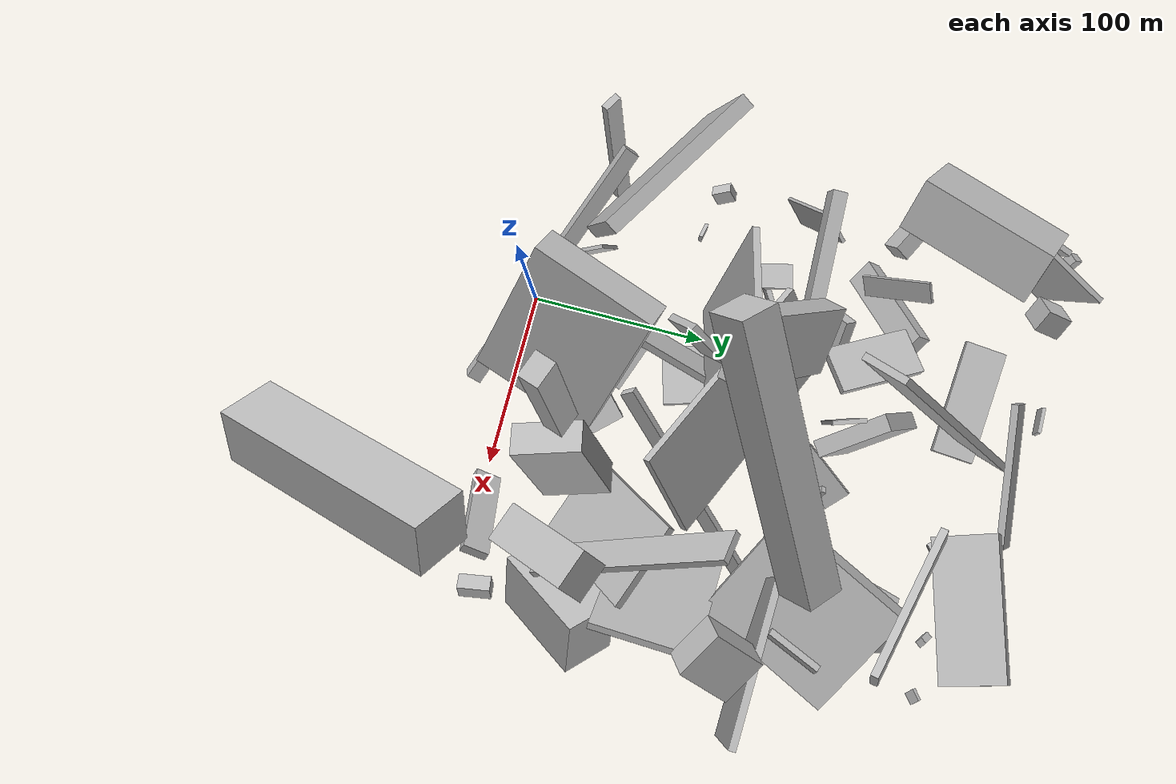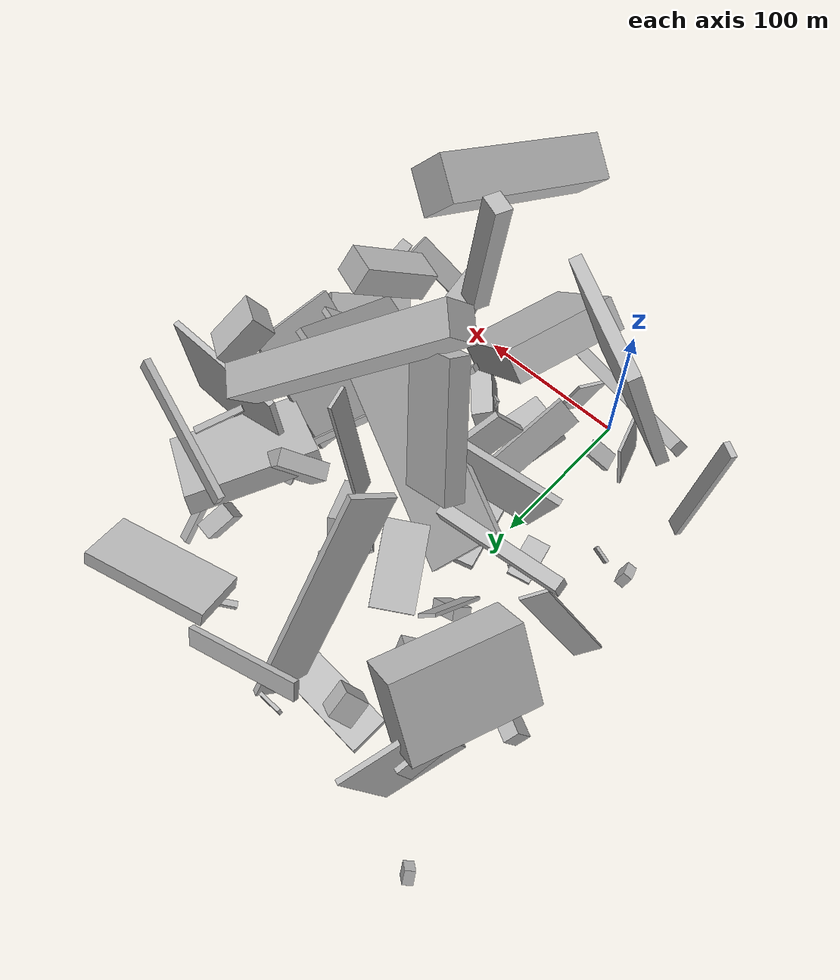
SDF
<sdf version="1.6">
 <world name="default">
  <model name="building_2">
   <static>0</static>
   <pose>152.42233029523481 9.300601098538692 126.22452351409257 -1.9900821503352017 0.5649265267559791 2.6356840387203686</pose>
   <link name="link">
    <gravity>0</gravity>
    <pose>0 0 66.5 0 0 0</pose>
    <collision name="collision"><geometry><box><size>32 32 133</size></box></geometry></collision>
    <visual name="visual">
     <cast_shadows>0</cast_shadows>
     <geometry><box><size>32 32 133</size></box></geometry>
     <material>
      <script>
       <uri>model://HANNAS_wall/materials/scripts</uri>
       <uri>model://HANNAS_wall/materials/textures</uri>
       <name>vrc/HANNAS_wall</name>
      </script>
     </material>
    </visual>
   </link>
  </model>
  <model name="building_4">
   <static>0</static>
   <pose>42.096926980872 282.9988920719816 45.15552902809155 2.5614873497946133 -0.9766296485122589 -0.8965976631601812</pose>
   <link name="link">
    <gravity>0</gravity>
    <pose>0 0 2.0 0 0 0</pose>
    <collision name="collision"><geometry><box><size>12 79 4</size></box></geometry></collision>
    <visual name="visual">
     <cast_shadows>0</cast_shadows>
     <geometry><box><size>12 79 4</size></box></geometry>
     <material>
      <script>
       <uri>model://HANNAS_wall/materials/scripts</uri>
       <uri>model://HANNAS_wall/materials/textures</uri>
       <name>vrc/HANNAS_wall</name>
      </script>
     </material>
    </visual>
   </link>
  </model>
  <model name="building_7">
   <static>0</static>
   <pose>-35.88063882042383 195.4363901122762 31.777627158521067 2.6410717811342366 -0.5989881819409302 2.553978412977638</pose>
   <link name="link">
    <gravity>0</gravity>
    <pose>0 0 5.0 0 0 0</pose>
    <collision name="collision"><geometry><box><size>16 60 10</size></box></geometry></collision>
    <visual name="visual">
     <cast_shadows>0</cast_shadows>
     <geometry><box><size>16 60 10</size></box></geometry>
     <material>
      <script>
       <uri>model://HANNAS_wall/materials/scripts</uri>
       <uri>model://HANNAS_wall/materials/textures</uri>
       <name>vrc/HANNAS_wall</name>
      </script>
     </material>
    </visual>
   </link>
  </model>
  <model name="building_9">
   <static>0</static>
   <pose>172.1837442272176 165.32553899334766 49.87654126402375 -2.7209618552122268 -1.4939852324768128 1.1256222110666152</pose>
   <link name="link">
    <gravity>0</gravity>
    <pose>0 0 2.0 0 0 0</pose>
    <collision name="collision"><geometry><box><size>71 88 4</size></box></geometry></collision>
    <visual name="visual">
     <cast_shadows>0</cast_shadows>
     <geometry><box><size>71 88 4</size></box></geometry>
     <material>
      <script>
       <uri>model://HANNAS_wall/materials/scripts</uri>
       <uri>model://HANNAS_wall/materials/textures</uri>
       <name>vrc/HANNAS_wall</name>
      </script>
     </material>
    </visual>
   </link>
  </model>
  <model name="building_16">
   <static>0</static>
   <pose>60.49876915282245 142.67490574462036 53.55372624333087 0.6424699418618434 -0.2744063656386967 -0.40605717008488196</pose>
   <link name="link">
    <gravity>0</gravity>
    <pose>0 0 27.5 0 0 0</pose>
    <collision name="collision"><geometry><box><size>127 4 55</size></box></geometry></collision>
    <visual name="visual">
     <cast_shadows>0</cast_shadows>
     <geometry><box><size>127 4 55</size></box></geometry>
     <material>
      <script>
       <uri>model://HANNAS_wall/materials/scripts</uri>
       <uri>model://HANNAS_wall/materials/textures</uri>
       <name>vrc/HANNAS_wall</name>
      </script>
     </material>
    </visual>
   </link>
  </model>
  <model name="building_21">
   <static>0</static>
   <pose>102.45086113861157 31.846263380389416 73.79373037577506 0.8201469944164821 -1.2658715717765194 -2.144439866136028</pose>
   <link name="link">
    <gravity>0</gravity>
    <pose>0 0 18.5 0 0 0</pose>
    <collision name="collision"><geometry><box><size>59 17 37</size></box></geometry></collision>
    <visual name="visual">
     <cast_shadows>0</cast_shadows>
     <geometry><box><size>59 17 37</size></box></geometry>
     <material>
      <script>
       <uri>model://HANNAS_wall/materials/scripts</uri>
       <uri>model://HANNAS_wall/materials/textures</uri>
       <name>vrc/HANNAS_wall</name>
      </script>
     </material>
    </visual>
   </link>
  </model>
  <model name="building_26">
   <static>0</static>
   <pose>23.459761342440395 50.82115027640816 21.65610436838669 0.2724773046648117 0.2986560567105044 1.2732314970203737</pose>
   <link name="link">
    <gravity>0</gravity>
    <pose>0 0 9.5 0 0 0</pose>
    <collision name="collision"><geometry><box><size>31 27 19</size></box></geometry></collision>
    <visual name="visual">
     <cast_shadows>0</cast_shadows>
     <geometry><box><size>31 27 19</size></box></geometry>
     <material>
      <script>
       <uri>model://HANNAS_wall/materials/scripts</uri>
       <uri>model://HANNAS_wall/materials/textures</uri>
       <name>vrc/HANNAS_wall</name>
      </script>
     </material>
    </visual>
   </link>
  </model>
  <model name="building_27">
   <static>0</static>
   <pose>-25.24261606161491 107.71383338074524 64.36000130535865 1.3027196394352996 0.2556428231968021 1.7552546998250067</pose>
   <link name="link">
    <gravity>0</gravity>
    <pose>0 0 30.5 0 0 0</pose>
    <collision name="collision"><geometry><box><size>4 88 61</size></box></geometry></collision>
    <visual name="visual">
     <cast_shadows>0</cast_shadows>
     <geometry><box><size>4 88 61</size></box></geometry>
     <material>
      <script>
       <uri>model://HANNAS_wall/materials/scripts</uri>
       <uri>model://HANNAS_wall/materials/textures</uri>
       <name>vrc/HANNAS_wall</name>
      </script>
     </material>
    </visual>
   </link>
  </model>
  <model name="building_28">
   <static>0</static>
   <pose>15.742415745526994 75.45590572815752 45.309912809821164 2.561096155473627 -0.7797399080218421 0.22382917311245695</pose>
   <link name="link">
    <gravity>0</gravity>
    <pose>0 0 2.0 0 0 0</pose>
    <collision name="collision"><geometry><box><size>19 76 4</size></box></geometry></collision>
    <visual name="visual">
     <cast_shadows>0</cast_shadows>
     <geometry><box><size>19 76 4</size></box></geometry>
     <material>
      <script>
       <uri>model://HANNAS_wall/materials/scripts</uri>
       <uri>model://HANNAS_wall/materials/textures</uri>
       <name>vrc/HANNAS_wall</name>
      </script>
     </material>
    </visual>
   </link>
  </model>
  <model name="building_32">
   <static>0</static>
   <pose>151.5416675359984 113.1220202769631 38.90093236110823 -0.8540106399498949 0.004329102594364371 1.5262706384560505</pose>
   <link name="link">
    <gravity>0</gravity>
    <pose>0 0 2.0 0 0 0</pose>
    <collision name="collision"><geometry><box><size>58 83 4</size></box></geometry></collision>
    <visual name="visual">
     <cast_shadows>0</cast_shadows>
     <geometry><box><size>58 83 4</size></box></geometry>
     <material>
      <script>
       <uri>model://HANNAS_wall/materials/scripts</uri>
       <uri>model://HANNAS_wall/materials/textures</uri>
       <name>vrc/HANNAS_wall</name>
      </script>
     </material>
    </visual>
   </link>
  </model>
  <model name="building_33">
   <static>0</static>
   <pose>157.6785712201397 226.69217224111304 40.62006326729352 -1.5080656141921909 -0.47793407802932747 2.658161037450032</pose>
   <link name="link">
    <gravity>0</gravity>
    <pose>0 0 41.0 0 0 0</pose>
    <collision name="collision"><geometry><box><size>70 13 82</size></box></geometry></collision>
    <visual name="visual">
     <cast_shadows>0</cast_shadows>
     <geometry><box><size>70 13 82</size></box></geometry>
     <material>
      <script>
       <uri>model://HANNAS_wall/materials/scripts</uri>
       <uri>model://HANNAS_wall/materials/textures</uri>
       <name>vrc/HANNAS_wall</name>
      </script>
     </material>
    </visual>
   </link>
  </model>
  <model name="building_40">
   <static>0</static>
   <pose>91.74232952677555 114.98618038016922 54.275255315298566 0.760561872734806 -0.618972989703657 1.9173274964065592</pose>
   <link name="link">
    <gravity>0</gravity>
    <pose>0 0 2.0 0 0 0</pose>
    <collision name="collision"><geometry><box><size>8 131 4</size></box></geometry></collision>
    <visual name="visual">
     <cast_shadows>0</cast_shadows>
     <geometry><box><size>8 131 4</size></box></geometry>
     <material>
      <script>
       <uri>model://HANNAS_wall/materials/scripts</uri>
       <uri>model://HANNAS_wall/materials/textures</uri>
       <name>vrc/HANNAS_wall</name>
      </script>
     </material>
    </visual>
   </link>
  </model>
  <model name="building_41">
   <static>0</static>
   <pose>0.21186698337289656 243.91762181542816 16.746223878311223 2.4772218470482303 1.4076971234457663 -2.299200870163506</pose>
   <link name="link">
    <gravity>0</gravity>
    <pose>0 0 12.0 0 0 0</pose>
    <collision name="collision"><geometry><box><size>4 65 24</size></box></geometry></collision>
    <visual name="visual">
     <cast_shadows>0</cast_shadows>
     <geometry><box><size>4 65 24</size></box></geometry>
     <material>
      <script>
       <uri>model://HANNAS_wall/materials/scripts</uri>
       <uri>model://HANNAS_wall/materials/textures</uri>
       <name>vrc/HANNAS_wall</name>
      </script>
     </material>
    </visual>
   </link>
  </model>
  <model name="building_46">
   <static>0</static>
   <pose>24.581769167013213 233.9079767213592 73.91647865820991 1.7916880451371118 -0.5267914129509113 1.1098553724860225</pose>
   <link name="link">
    <gravity>0</gravity>
    <pose>0 0 2.0 0 0 0</pose>
    <collision name="collision"><geometry><box><size>28 150 4</size></box></geometry></collision>
    <visual name="visual">
     <cast_shadows>0</cast_shadows>
     <geometry><box><size>28 150 4</size></box></geometry>
     <material>
      <script>
       <uri>model://HANNAS_wall/materials/scripts</uri>
       <uri>model://HANNAS_wall/materials/textures</uri>
       <name>vrc/HANNAS_wall</name>
      </script>
     </material>
    </visual>
   </link>
  </model>
  <model name="building_48">
   <static>0</static>
   <pose>0.9185182569056458 16.05612232567306 75.20910910591914 -2.5817223938836484 -0.40113878775696615 2.708077581698563</pose>
   <link name="link">
    <gravity>0</gravity>
    <pose>0 0 4.0 0 0 0</pose>
    <collision name="collision"><geometry><box><size>150 8 8</size></box></geometry></collision>
    <visual name="visual">
     <cast_shadows>0</cast_shadows>
     <geometry><box><size>150 8 8</size></box></geometry>
     <material>
      <script>
       <uri>model://HANNAS_wall/materials/scripts</uri>
       <uri>model://HANNAS_wall/materials/textures</uri>
       <name>vrc/HANNAS_wall</name>
      </script>
     </material>
    </visual>
   </link>
  </model>
  <model name="building_49">
   <static>0</static>
   <pose>86.66063074167242 41.93246513726297 150.8931528731307 -2.068247010331143 1.4712553646527113 0.7341699141451893</pose>
   <link name="link">
    <gravity>0</gravity>
    <pose>0 0 7.0 0 0 0</pose>
    <collision name="collision"><geometry><box><size>83 11 14</size></box></geometry></collision>
    <visual name="visual">
     <cast_shadows>0</cast_shadows>
     <geometry><box><size>83 11 14</size></box></geometry>
     <material>
      <script>
       <uri>model://HANNAS_wall/materials/scripts</uri>
       <uri>model://HANNAS_wall/materials/textures</uri>
       <name>vrc/HANNAS_wall</name>
      </script>
     </material>
    </visual>
   </link>
  </model>
  <model name="building_54">
   <static>0</static>
   <pose>26.304677418278185 111.4302920119732 82.17824292562936 0.9372469886001725 0.04054813314128904 -0.4699355250626714</pose>
   <link name="link">
    <gravity>0</gravity>
    <pose>0 0 13.5 0 0 0</pose>
    <collision name="collision"><geometry><box><size>4 28 27</size></box></geometry></collision>
    <visual name="visual">
     <cast_shadows>0</cast_shadows>
     <geometry><box><size>4 28 27</size></box></geometry>
     <material>
      <script>
       <uri>model://HANNAS_wall/materials/scripts</uri>
       <uri>model://HANNAS_wall/materials/textures</uri>
       <name>vrc/HANNAS_wall</name>
      </script>
     </material>
    </visual>
   </link>
  </model>
  <model name="building_60">
   <static>0</static>
   <pose>181.66629111289356 83.9836842231261 35.72566355148956 2.289998716340971 0.9608352932238879 0.052463613633189805</pose>
   <link name="link">
    <gravity>0</gravity>
    <pose>0 0 28.5 0 0 0</pose>
    <collision name="collision"><geometry><box><size>39 30 57</size></box></geometry></collision>
    <visual name="visual">
     <cast_shadows>0</cast_shadows>
     <geometry><box><size>39 30 57</size></box></geometry>
     <material>
      <script>
       <uri>model://HANNAS_wall/materials/scripts</uri>
       <uri>model://HANNAS_wall/materials/textures</uri>
       <name>vrc/HANNAS_wall</name>
      </script>
     </material>
    </visual>
   </link>
  </model>
  <model name="building_68">
   <static>0</static>
   <pose>137.5747591793177 96.70649619365679 82.11651513001433 0.7812156430565892 -0.44776774662785984 -0.14934844607636158</pose>
   <link name="link">
    <gravity>0</gravity>
    <pose>0 0 2.0 0 0 0</pose>
    <collision name="collision"><geometry><box><size>18 129 4</size></box></geometry></collision>
    <visual name="visual">
     <cast_shadows>0</cast_shadows>
     <geometry><box><size>18 129 4</size></box></geometry>
     <material>
      <script>
       <uri>model://HANNAS_wall/materials/scripts</uri>
       <uri>model://HANNAS_wall/materials/textures</uri>
       <name>vrc/HANNAS_wall</name>
      </script>
     </material>
    </visual>
   </link>
  </model>
  <model name="building_71">
   <static>0</static>
   <pose>134.95249990710266 184.67322444478677 117.29870709316087 0.8837518963767844 -0.36605665634446577 -0.7346794803478616</pose>
   <link name="link">
    <gravity>0</gravity>
    <pose>0 0 75.0 0 0 0</pose>
    <collision name="collision"><geometry><box><size>20 23 150</size></box></geometry></collision>
    <visual name="visual">
     <cast_shadows>0</cast_shadows>
     <geometry><box><size>20 23 150</size></box></geometry>
     <material>
      <script>
       <uri>model://HANNAS_wall/materials/scripts</uri>
       <uri>model://HANNAS_wall/materials/textures</uri>
       <name>vrc/HANNAS_wall</name>
      </script>
     </material>
    </visual>
   </link>
  </model>
  <model name="building_72">
   <static>0</static>
   <pose>129.17239955117816 228.41572052936635 126.89058756726115 0.9238021145227862 -1.1354190412993392 -2.7177885702513462</pose>
   <link name="link">
    <gravity>0</gravity>
    <pose>0 0 2.0 0 0 0</pose>
    <collision name="collision"><geometry><box><size>9 85 4</size></box></geometry></collision>
    <visual name="visual">
     <cast_shadows>0</cast_shadows>
     <geometry><box><size>9 85 4</size></box></geometry>
     <material>
      <script>
       <uri>model://HANNAS_wall/materials/scripts</uri>
       <uri>model://HANNAS_wall/materials/textures</uri>
       <name>vrc/HANNAS_wall</name>
      </script>
     </material>
    </visual>
   </link>
  </model>
  <model name="building_79">
   <static>0</static>
   <pose>41.82411314279655 194.99452376280638 75.91360563969086 1.613600862075014 -0.5361223149123683 2.116547844480711</pose>
   <link name="link">
    <gravity>0</gravity>
    <pose>0 0 4.5 0 0 0</pose>
    <collision name="collision"><geometry><box><size>41 41 9</size></box></geometry></collision>
    <visual name="visual">
     <cast_shadows>0</cast_shadows>
     <geometry><box><size>41 41 9</size></box></geometry>
     <material>
      <script>
       <uri>model://HANNAS_wall/materials/scripts</uri>
       <uri>model://HANNAS_wall/materials/textures</uri>
       <name>vrc/HANNAS_wall</name>
      </script>
     </material>
    </visual>
   </link>
  </model>
  <model name="building_84">
   <static>0</static>
   <pose>3.830412802898927 111.66089949103365 14.124271670825188 -1.580256828080733 0.11166927472663302 -1.2960013006563287</pose>
   <link name="link">
    <gravity>0</gravity>
    <pose>0 0 16.5 0 0 0</pose>
    <collision name="collision"><geometry><box><size>67 4 33</size></box></geometry></collision>
    <visual name="visual">
     <cast_shadows>0</cast_shadows>
     <geometry><box><size>67 4 33</size></box></geometry>
     <material>
      <script>
       <uri>model://HANNAS_wall/materials/scripts</uri>
       <uri>model://HANNAS_wall/materials/textures</uri>
       <name>vrc/HANNAS_wall</name>
      </script>
     </material>
    </visual>
   </link>
  </model>
  <model name="building_85">
   <static>0</static>
   <pose>161.19960800051376 189.29158090085713 57.674093801411765 2.9582077475473914 -0.4130568547110429 -0.3272084377911734</pose>
   <link name="link">
    <gravity>0</gravity>
    <pose>0 0 2.0 0 0 0</pose>
    <collision name="collision"><geometry><box><size>4 32 4</size></box></geometry></collision>
    <visual name="visual">
     <cast_shadows>0</cast_shadows>
     <geometry><box><size>4 32 4</size></box></geometry>
     <material>
      <script>
       <uri>model://HANNAS_wall/materials/scripts</uri>
       <uri>model://HANNAS_wall/materials/textures</uri>
       <name>vrc/HANNAS_wall</name>
      </script>
     </material>
    </visual>
   </link>
  </model>
  <model name="building_87">
   <static>0</static>
   <pose>79.00849768677497 265.3218452734974 41.504796183092076 1.5388375983981977 -0.41333605852350114 1.8458585883518386</pose>
   <link name="link">
    <gravity>0</gravity>
    <pose>0 0 39.5 0 0 0</pose>
    <collision name="collision"><geometry><box><size>36 9 79</size></box></geometry></collision>
    <visual name="visual">
     <cast_shadows>0</cast_shadows>
     <geometry><box><size>36 9 79</size></box></geometry>
     <material>
      <script>
       <uri>model://HANNAS_wall/materials/scripts</uri>
       <uri>model://HANNAS_wall/materials/textures</uri>
       <name>vrc/HANNAS_wall</name>
      </script>
     </material>
    </visual>
   </link>
  </model>
  <model name="building_88">
   <static>0</static>
   <pose>-84.7504277012542 32.02086546142266 54.69824919135526 1.5050878787879722 -0.08823910062599832 1.060327351548515</pose>
   <link name="link">
    <gravity>0</gravity>
    <pose>0 0 5.0 0 0 0</pose>
    <collision name="collision"><geometry><box><size>4 101 10</size></box></geometry></collision>
    <visual name="visual">
     <cast_shadows>0</cast_shadows>
     <geometry><box><size>4 101 10</size></box></geometry>
     <material>
      <script>
       <uri>model://HANNAS_wall/materials/scripts</uri>
       <uri>model://HANNAS_wall/materials/textures</uri>
       <name>vrc/HANNAS_wall</name>
      </script>
     </material>
    </visual>
   </link>
  </model>
  <model name="building_89">
   <static>0</static>
   <pose>78.92464250827265 36.97795186631538 21.822795056075485 1.490695301946631 -0.24965683342504505 -2.375994911768439</pose>
   <link name="link">
    <gravity>0</gravity>
    <pose>0 0 18.5 0 0 0</pose>
    <collision name="collision"><geometry><box><size>14 20 37</size></box></geometry></collision>
    <visual name="visual">
     <cast_shadows>0</cast_shadows>
     <geometry><box><size>14 20 37</size></box></geometry>
     <material>
      <script>
       <uri>model://HANNAS_wall/materials/scripts</uri>
       <uri>model://HANNAS_wall/materials/textures</uri>
       <name>vrc/HANNAS_wall</name>
      </script>
     </material>
    </visual>
   </link>
  </model>
  <model name="building_90">
   <static>0</static>
   <pose>-26.41346465355104 268.8447337281282 96.67308029547891 0.8017011022150139 -0.5005838987385095 -1.5571899116833932</pose>
   <link name="link">
    <gravity>0</gravity>
    <pose>0 0 6.0 0 0 0</pose>
    <collision name="collision"><geometry><box><size>15 14 12</size></box></geometry></collision>
    <visual name="visual">
     <cast_shadows>0</cast_shadows>
     <geometry><box><size>15 14 12</size></box></geometry>
     <material>
      <script>
       <uri>model://HANNAS_wall/materials/scripts</uri>
       <uri>model://HANNAS_wall/materials/textures</uri>
       <name>vrc/HANNAS_wall</name>
      </script>
     </material>
    </visual>
   </link>
  </model>
  <model name="building_91">
   <static>0</static>
   <pose>134.87672359609644 261.964418627514 12.181159679398286 2.3410454015406263 -0.025687105266667128 0.955254663790249</pose>
   <link name="link">
    <gravity>0</gravity>
    <pose>0 0 2.5 0 0 0</pose>
    <collision name="collision"><geometry><box><size>4 8 5</size></box></geometry></collision>
    <visual name="visual">
     <cast_shadows>0</cast_shadows>
     <geometry><box><size>4 8 5</size></box></geometry>
     <material>
      <script>
       <uri>model://HANNAS_wall/materials/scripts</uri>
       <uri>model://HANNAS_wall/materials/textures</uri>
       <name>vrc/HANNAS_wall</name>
      </script>
     </material>
    </visual>
   </link>
  </model>
  <model name="building_92">
   <static>0</static>
   <pose>83.55662447409391 253.29931992467147 7.702056708117101 -1.2516581342038744 -0.02632075797590579 -0.9109849777625056</pose>
   <link name="link">
    <gravity>0</gravity>
    <pose>0 0 14.5 0 0 0</pose>
    <collision name="collision"><geometry><box><size>4 4 29</size></box></geometry></collision>
    <visual name="visual">
     <cast_shadows>0</cast_shadows>
     <geometry><box><size>4 4 29</size></box></geometry>
     <material>
      <script>
       <uri>model://HANNAS_wall/materials/scripts</uri>
       <uri>model://HANNAS_wall/materials/textures</uri>
       <name>vrc/HANNAS_wall</name>
      </script>
     </material>
    </visual>
   </link>
  </model>
  <model name="building_93">
   <static>0</static>
   <pose>-2.655198550285738 185.32912642338286 76.9664814968375 -1.2025206232160837 1.2292253906236614 -0.6190943176380629</pose>
   <link name="link">
    <gravity>0</gravity>
    <pose>0 0 12.5 0 0 0</pose>
    <collision name="collision"><geometry><box><size>4 49 25</size></box></geometry></collision>
    <visual name="visual">
     <cast_shadows>0</cast_shadows>
     <geometry><box><size>4 49 25</size></box></geometry>
     <material>
      <script>
       <uri>model://HANNAS_wall/materials/scripts</uri>
       <uri>model://HANNAS_wall/materials/textures</uri>
       <name>vrc/HANNAS_wall</name>
      </script>
     </material>
    </visual>
   </link>
  </model>
  <model name="building_108">
   <static>0</static>
   <pose>69.37209755465028 186.40225501150493 11.072009079990066 -0.7165046743824521 0.8581922393818937 -0.6848792879594238</pose>
   <link name="link">
    <gravity>0</gravity>
    <pose>0 0 2.0 0 0 0</pose>
    <collision name="collision"><geometry><box><size>6 3 4</size></box></geometry></collision>
    <visual name="visual">
     <cast_shadows>0</cast_shadows>
     <geometry><box><size>6 3 4</size></box></geometry>
     <material>
      <script>
       <uri>model://HANNAS_wall/materials/scripts</uri>
       <uri>model://HANNAS_wall/materials/textures</uri>
       <name>vrc/HANNAS_wall</name>
      </script>
     </material>
    </visual>
   </link>
  </model>
  <model name="building_113">
   <static>0</static>
   <pose>137.3181637405078 54.1252546587435 18.63826551301723 -1.0678172053967758 0.10492852163526416 1.9856403361231771</pose>
   <link name="link">
    <gravity>0</gravity>
    <pose>0 0 2.0 0 0 0</pose>
    <collision name="collision"><geometry><box><size>15 15 4</size></box></geometry></collision>
    <visual name="visual">
     <cast_shadows>0</cast_shadows>
     <geometry><box><size>15 15 4</size></box></geometry>
     <material>
      <script>
       <uri>model://HANNAS_wall/materials/scripts</uri>
       <uri>model://HANNAS_wall/materials/textures</uri>
       <name>vrc/HANNAS_wall</name>
      </script>
     </material>
    </visual>
   </link>
  </model>
  <model name="building_114">
   <static>0</static>
   <pose>135.45604153608065 12.450193409009412 58.30316069823279 -0.5205111344575549 -0.6675508528604709 0.23625808887571803</pose>
   <link name="link">
    <gravity>0</gravity>
    <pose>0 0 2.5 0 0 0</pose>
    <collision name="collision"><geometry><box><size>56 14 5</size></box></geometry></collision>
    <visual name="visual">
     <cast_shadows>0</cast_shadows>
     <geometry><box><size>56 14 5</size></box></geometry>
     <material>
      <script>
       <uri>model://HANNAS_wall/materials/scripts</uri>
       <uri>model://HANNAS_wall/materials/textures</uri>
       <name>vrc/HANNAS_wall</name>
      </script>
     </material>
    </visual>
   </link>
  </model>
  <model name="building_118">
   <static>0</static>
   <pose>-66.64194956607521 151.35297736357364 42.31051475997283 0.18106480295952396 -1.08057731507474 0.6447893356782521</pose>
   <link name="link">
    <gravity>0</gravity>
    <pose>0 0 8.5 0 0 0</pose>
    <collision name="collision"><geometry><box><size>80 2 17</size></box></geometry></collision>
    <visual name="visual">
     <cast_shadows>0</cast_shadows>
     <geometry><box><size>80 2 17</size></box></geometry>
     <material>
      <script>
       <uri>model://HANNAS_wall/materials/scripts</uri>
       <uri>model://HANNAS_wall/materials/textures</uri>
       <name>vrc/HANNAS_wall</name>
      </script>
     </material>
    </visual>
   </link>
  </model>
  <model name="building_124">
   <static>0</static>
   <pose>41.67428767741245 141.38742075331268 137.7635516199394 0.6216963853197501 -0.9228323986170224 -0.8588644308909181</pose>
   <link name="link">
    <gravity>0</gravity>
    <pose>0 0 17.5 0 0 0</pose>
    <collision name="collision"><geometry><box><size>80 13 35</size></box></geometry></collision>
    <visual name="visual">
     <cast_shadows>0</cast_shadows>
     <geometry><box><size>80 13 35</size></box></geometry>
     <material>
      <script>
       <uri>model://HANNAS_wall/materials/scripts</uri>
       <uri>model://HANNAS_wall/materials/textures</uri>
       <name>vrc/HANNAS_wall</name>
      </script>
     </material>
    </visual>
   </link>
  </model>
  <model name="building_127">
   <static>0</static>
   <pose>-36.138355567953965 141.41686665216923 46.089510602880964 1.6834840650713698 1.5543588179972185 0.33866585793805326</pose>
   <link name="link">
    <gravity>0</gravity>
    <pose>0 0 13.5 0 0 0</pose>
    <collision name="collision"><geometry><box><size>2 14 27</size></box></geometry></collision>
    <visual name="visual">
     <cast_shadows>0</cast_shadows>
     <geometry><box><size>2 14 27</size></box></geometry>
     <material>
      <script>
       <uri>model://HANNAS_wall/materials/scripts</uri>
       <uri>model://HANNAS_wall/materials/textures</uri>
       <name>vrc/HANNAS_wall</name>
      </script>
     </material>
    </visual>
   </link>
  </model>
  <model name="building_136">
   <static>0</static>
   <pose>148.04655091744903 60.38984113060768 80.53313308609921 0.021101218112347775 -0.5998730286778289 1.2162299499253673</pose>
   <link name="link">
    <gravity>0</gravity>
    <pose>0 0 10.0 0 0 0</pose>
    <collision name="collision"><geometry><box><size>57 22 20</size></box></geometry></collision>
    <visual name="visual">
     <cast_shadows>0</cast_shadows>
     <geometry><box><size>57 22 20</size></box></geometry>
     <material>
      <script>
       <uri>model://HANNAS_wall/materials/scripts</uri>
       <uri>model://HANNAS_wall/materials/textures</uri>
       <name>vrc/HANNAS_wall</name>
      </script>
     </material>
    </visual>
   </link>
  </model>
  <model name="building_139">
   <static>0</static>
   <pose>-54.67008197862975 225.89869841322042 100.05874267393595 0.8786982054403538 0.07174180884399635 -1.9214660878790364</pose>
   <link name="link">
    <gravity>0</gravity>
    <pose>0 0 13.5 0 0 0</pose>
    <collision name="collision"><geometry><box><size>72 47 27</size></box></geometry></collision>
    <visual name="visual">
     <cast_shadows>0</cast_shadows>
     <geometry><box><size>72 47 27</size></box></geometry>
     <material>
      <script>
       <uri>model://HANNAS_wall/materials/scripts</uri>
       <uri>model://HANNAS_wall/materials/textures</uri>
       <name>vrc/HANNAS_wall</name>
      </script>
     </material>
    </visual>
   </link>
  </model>
  <model name="building_146">
   <static>0</static>
   <pose>-70.69876498077625 256.74664099457164 46.95049049349375 0.43456099965837847 -0.0559963701561626 2.748317573575436</pose>
   <link name="link">
    <gravity>0</gravity>
    <pose>0 0 28.0 0 0 0</pose>
    <collision name="collision"><geometry><box><size>3 50 56</size></box></geometry></collision>
    <visual name="visual">
     <cast_shadows>0</cast_shadows>
     <geometry><box><size>3 50 56</size></box></geometry>
     <material>
      <script>
       <uri>model://HANNAS_wall/materials/scripts</uri>
       <uri>model://HANNAS_wall/materials/textures</uri>
       <name>vrc/HANNAS_wall</name>
      </script>
     </material>
    </visual>
   </link>
  </model>
  <model name="building_150">
   <static>0</static>
   <pose>-92.18173266621392 293.30490570934745 13.27854563352819 0.8609946214310079 0.20611502448929178 -2.414494587302312</pose>
   <link name="link">
    <gravity>0</gravity>
    <pose>0 0 4.0 0 0 0</pose>
    <collision name="collision"><geometry><box><size>6 9 8</size></box></geometry></collision>
    <visual name="visual">
     <cast_shadows>0</cast_shadows>
     <geometry><box><size>6 9 8</size></box></geometry>
     <material>
      <script>
       <uri>model://HANNAS_wall/materials/scripts</uri>
       <uri>model://HANNAS_wall/materials/textures</uri>
       <name>vrc/HANNAS_wall</name>
      </script>
     </material>
    </visual>
   </link>
  </model>
  <model name="building_151">
   <static>0</static>
   <pose>148.23517281301997 218.8206450079436 14.978714597388018 2.239144825952237 -0.7000350774819818 2.8931562468046486</pose>
   <link name="link">
    <gravity>0</gravity>
    <pose>0 0 15.0 0 0 0</pose>
    <collision name="collision"><geometry><box><size>13 3 30</size></box></geometry></collision>
    <visual name="visual">
     <cast_shadows>0</cast_shadows>
     <geometry><box><size>13 3 30</size></box></geometry>
     <material>
      <script>
       <uri>model://HANNAS_wall/materials/scripts</uri>
       <uri>model://HANNAS_wall/materials/textures</uri>
       <name>vrc/HANNAS_wall</name>
      </script>
     </material>
    </visual>
   </link>
  </model>
  <model name="building_152">
   <static>0</static>
   <pose>-38.461023745916876 61.96175027838083 141.50513339044002 -0.08828223984609304 -0.32844961454530003 -2.1095051988470406</pose>
   <link name="link">
    <gravity>0</gravity>
    <pose>0 0 40.0 0 0 0</pose>
    <collision name="collision"><geometry><box><size>7 80 80</size></box></geometry></collision>
    <visual name="visual">
     <cast_shadows>0</cast_shadows>
     <geometry><box><size>7 80 80</size></box></geometry>
     <material>
      <script>
       <uri>model://HANNAS_wall/materials/scripts</uri>
       <uri>model://HANNAS_wall/materials/textures</uri>
       <name>vrc/HANNAS_wall</name>
      </script>
     </material>
    </visual>
   </link>
  </model>
  <model name="building_154">
   <static>0</static>
   <pose>109.28493196574189 180.65191419155468 48.59039065929154 0.33129650196583876 0.5518466000831495 -2.4237232800017683</pose>
   <link name="link">
    <gravity>0</gravity>
    <pose>0 0 10.5 0 0 0</pose>
    <collision name="collision"><geometry><box><size>32 11 21</size></box></geometry></collision>
    <visual name="visual">
     <cast_shadows>0</cast_shadows>
     <geometry><box><size>32 11 21</size></box></geometry>
     <material>
      <script>
       <uri>model://HANNAS_wall/materials/scripts</uri>
       <uri>model://HANNAS_wall/materials/textures</uri>
       <name>vrc/HANNAS_wall</name>
      </script>
     </material>
    </visual>
   </link>
  </model>
  <model name="building_174">
   <static>0</static>
   <pose>16.102638267609112 1.6471267451189737 28.19156657837086 1.4149120375371975 0.2636925628909257 2.6304339131077334</pose>
   <link name="link">
    <gravity>0</gravity>
    <pose>0 0 9.5 0 0 0</pose>
    <collision name="collision"><geometry><box><size>2 42 19</size></box></geometry></collision>
    <visual name="visual">
     <cast_shadows>0</cast_shadows>
     <geometry><box><size>2 42 19</size></box></geometry>
     <material>
      <script>
       <uri>model://HANNAS_wall/materials/scripts</uri>
       <uri>model://HANNAS_wall/materials/textures</uri>
       <name>vrc/HANNAS_wall</name>
      </script>
     </material>
    </visual>
   </link>
  </model>
  <model name="building_177">
   <static>0</static>
   <pose>58.30841510132986 48.896459324677544 31.405404558395595 2.696720580779652 0.3693205238838727 -2.318419143344399</pose>
   <link name="link">
    <gravity>0</gravity>
    <pose>0 0 10.5 0 0 0</pose>
    <collision name="collision"><geometry><box><size>2 8 21</size></box></geometry></collision>
    <visual name="visual">
     <cast_shadows>0</cast_shadows>
     <geometry><box><size>2 8 21</size></box></geometry>
     <material>
      <script>
       <uri>model://HANNAS_wall/materials/scripts</uri>
       <uri>model://HANNAS_wall/materials/textures</uri>
       <name>vrc/HANNAS_wall</name>
      </script>
     </material>
    </visual>
   </link>
  </model>
  <model name="building_179">
   <static>0</static>
   <pose>-19.057788044272776 170.0747988888679 23.915783830424566 -0.944905386119338 -0.6178934700997857 -0.9736253011168717</pose>
   <link name="link">
    <gravity>0</gravity>
    <pose>0 0 6.0 0 0 0</pose>
    <collision name="collision"><geometry><box><size>8 22 12</size></box></geometry></collision>
    <visual name="visual">
     <cast_shadows>0</cast_shadows>
     <geometry><box><size>8 22 12</size></box></geometry>
     <material>
      <script>
       <uri>model://HANNAS_wall/materials/scripts</uri>
       <uri>model://HANNAS_wall/materials/textures</uri>
       <name>vrc/HANNAS_wall</name>
      </script>
     </material>
    </visual>
   </link>
  </model>
  <model name="building_183">
   <static>0</static>
   <pose>129.88341918455976 226.1136108462717 27.103805146894217 -1.8933069399339753 0.41994908690558197 1.3508359268489907</pose>
   <link name="link">
    <gravity>0</gravity>
    <pose>0 0 5.5 0 0 0</pose>
    <collision name="collision"><geometry><box><size>20 19 11</size></box></geometry></collision>
    <visual name="visual">
     <cast_shadows>0</cast_shadows>
     <geometry><box><size>20 19 11</size></box></geometry>
     <material>
      <script>
       <uri>model://HANNAS_wall/materials/scripts</uri>
       <uri>model://HANNAS_wall/materials/textures</uri>
       <name>vrc/HANNAS_wall</name>
      </script>
     </material>
    </visual>
   </link>
  </model>
  <model name="building_187">
   <static>0</static>
   <pose>10.988696697477419 287.48116960574 49.10961476207445 0.004100025468329342 -0.102109554846844 -1.5614478450743123</pose>
   <link name="link">
    <gravity>0</gravity>
    <pose>0 0 4.0 0 0 0</pose>
    <collision name="collision"><geometry><box><size>2 14 8</size></box></geometry></collision>
    <visual name="visual">
     <cast_shadows>0</cast_shadows>
     <geometry><box><size>2 14 8</size></box></geometry>
     <material>
      <script>
       <uri>model://HANNAS_wall/materials/scripts</uri>
       <uri>model://HANNAS_wall/materials/textures</uri>
       <name>vrc/HANNAS_wall</name>
      </script>
     </material>
    </visual>
   </link>
  </model>
  <model name="building_189">
   <static>0</static>
   <pose>32.27807856044235 40.7133315417303 100.00778446311043 0.17295826821143107 -0.8268862324171263 2.6881671858594824</pose>
   <link name="link">
    <gravity>0</gravity>
    <pose>0 0 10.0 0 0 0</pose>
    <collision name="collision"><geometry><box><size>80 67 20</size></box></geometry></collision>
    <visual name="visual">
     <cast_shadows>0</cast_shadows>
     <geometry><box><size>80 67 20</size></box></geometry>
     <material>
      <script>
       <uri>model://HANNAS_wall/materials/scripts</uri>
       <uri>model://HANNAS_wall/materials/textures</uri>
       <name>vrc/HANNAS_wall</name>
      </script>
     </material>
    </visual>
   </link>
  </model>
  <model name="building_190">
   <static>0</static>
   <pose>169.7400912257943 28.743723079151827 56.519348935413035 -1.5515693371586023 -1.2563372176272805 -3.002329863226693</pose>
   <link name="link">
    <gravity>0</gravity>
    <pose>0 0 8.5 0 0 0</pose>
    <collision name="collision"><geometry><box><size>12 8 17</size></box></geometry></collision>
    <visual name="visual">
     <cast_shadows>0</cast_shadows>
     <geometry><box><size>12 8 17</size></box></geometry>
     <material>
      <script>
       <uri>model://HANNAS_wall/materials/scripts</uri>
       <uri>model://HANNAS_wall/materials/textures</uri>
       <name>vrc/HANNAS_wall</name>
      </script>
     </material>
    </visual>
   </link>
  </model>
  <model name="building_193">
   <static>0</static>
   <pose>-30.91615909003603 38.023803219954786 34.79413678928143 -2.563917706480075 1.148716998436649 2.5180195010953135</pose>
   <link name="link">
    <gravity>0</gravity>
    <pose>0 0 20.5 0 0 0</pose>
    <collision name="collision"><geometry><box><size>24 2 41</size></box></geometry></collision>
    <visual name="visual">
     <cast_shadows>0</cast_shadows>
     <geometry><box><size>24 2 41</size></box></geometry>
     <material>
      <script>
       <uri>model://HANNAS_wall/materials/scripts</uri>
       <uri>model://HANNAS_wall/materials/textures</uri>
       <name>vrc/HANNAS_wall</name>
      </script>
     </material>
    </visual>
   </link>
  </model>
  <model name="building_197">
   <static>0</static>
   <pose>-28.163547451135344 131.71597591847066 33.486297504518824 -0.8743811451708915 1.3696145730559854 -1.8942516650010255</pose>
   <link name="link">
    <gravity>0</gravity>
    <pose>0 0 1.5 0 0 0</pose>
    <collision name="collision"><geometry><box><size>6 10 3</size></box></geometry></collision>
    <visual name="visual">
     <cast_shadows>0</cast_shadows>
     <geometry><box><size>6 10 3</size></box></geometry>
     <material>
      <script>
       <uri>model://HANNAS_wall/materials/scripts</uri>
       <uri>model://HANNAS_wall/materials/textures</uri>
       <name>vrc/HANNAS_wall</name>
      </script>
     </material>
    </visual>
   </link>
  </model>
  <model name="building_198">
   <static>0</static>
   <pose>-71.15586014627031 273.74402044534503 85.66496884619943 -1.1909498022379768 -0.11912916216434097 2.8572758482667067</pose>
   <link name="link">
    <gravity>0</gravity>
    <pose>0 0 13.0 0 0 0</pose>
    <collision name="collision"><geometry><box><size>3 18 26</size></box></geometry></collision>
    <visual name="visual">
     <cast_shadows>0</cast_shadows>
     <geometry><box><size>3 18 26</size></box></geometry>
     <material>
      <script>
       <uri>model://HANNAS_wall/materials/scripts</uri>
       <uri>model://HANNAS_wall/materials/textures</uri>
       <name>vrc/HANNAS_wall</name>
      </script>
     </material>
    </visual>
   </link>
  </model>
  <model name="building_201">
   <static>0</static>
   <pose>168.26047934379298 261.97158584708296 6.7424513150447 2.1971092861208734 0.13911526963376283 -2.4873417742751154</pose>
   <link name="link">
    <gravity>0</gravity>
    <pose>0 0 1.0 0 0 0</pose>
    <collision name="collision"><geometry><box><size>7 7 2</size></box></geometry></collision>
    <visual name="visual">
     <cast_shadows>0</cast_shadows>
     <geometry><box><size>7 7 2</size></box></geometry>
     <material>
      <script>
       <uri>model://HANNAS_wall/materials/scripts</uri>
       <uri>model://HANNAS_wall/materials/textures</uri>
       <name>vrc/HANNAS_wall</name>
      </script>
     </material>
    </visual>
   </link>
  </model>
  <model name="building_204">
   <static>0</static>
   <pose>125.0363322119876 80.83922382317851 54.124915863477625 -0.7464635586809719 -0.24861883604783255 2.7816132903694597</pose>
   <link name="link">
    <gravity>0</gravity>
    <pose>0 0 2.0 0 0 0</pose>
    <collision name="collision"><geometry><box><size>49 80 4</size></box></geometry></collision>
    <visual name="visual">
     <cast_shadows>0</cast_shadows>
     <geometry><box><size>49 80 4</size></box></geometry>
     <material>
      <script>
       <uri>model://HANNAS_wall/materials/scripts</uri>
       <uri>model://HANNAS_wall/materials/textures</uri>
       <name>vrc/HANNAS_wall</name>
      </script>
     </material>
    </visual>
   </link>
  </model>
  <model name="building_208">
   <static>0</static>
   <pose>-84.85474849500832 197.1929691540128 15.394809139287764 0.5889473202387056 -0.07847676521007842 2.6718630736381233</pose>
   <link name="link">
    <gravity>0</gravity>
    <pose>0 0 7.0 0 0 0</pose>
    <collision name="collision"><geometry><box><size>21 10 14</size></box></geometry></collision>
    <visual name="visual">
     <cast_shadows>0</cast_shadows>
     <geometry><box><size>21 10 14</size></box></geometry>
     <material>
      <script>
       <uri>model://HANNAS_wall/materials/scripts</uri>
       <uri>model://HANNAS_wall/materials/textures</uri>
       <name>vrc/HANNAS_wall</name>
      </script>
     </material>
    </visual>
   </link>
  </model>
  <model name="building_210">
   <static>0</static>
   <pose>-55.89697592716869 85.7656043662412 19.351360191425293 -0.014587398220622959 0.4575507684811674 3.006054307319952</pose>
   <link name="link">
    <gravity>0</gravity>
    <pose>0 0 2.0 0 0 0</pose>
    <collision name="collision"><geometry><box><size>11 2 4</size></box></geometry></collision>
    <visual name="visual">
     <cast_shadows>0</cast_shadows>
     <geometry><box><size>11 2 4</size></box></geometry>
     <material>
      <script>
       <uri>model://HANNAS_wall/materials/scripts</uri>
       <uri>model://HANNAS_wall/materials/textures</uri>
       <name>vrc/HANNAS_wall</name>
      </script>
     </material>
    </visual>
   </link>
  </model>
  <model name="building_213">
   <static>0</static>
   <pose>115.56423024746415 174.77156003841856 19.092532010232567 1.3919070221348768 0.9174293579095406 1.707581705456736</pose>
   <link name="link">
    <gravity>0</gravity>
    <pose>0 0 27.5 0 0 0</pose>
    <collision name="collision"><geometry><box><size>7 3 55</size></box></geometry></collision>
    <visual name="visual">
     <cast_shadows>0</cast_shadows>
     <geometry><box><size>7 3 55</size></box></geometry>
     <material>
      <script>
       <uri>model://HANNAS_wall/materials/scripts</uri>
       <uri>model://HANNAS_wall/materials/textures</uri>
       <name>vrc/HANNAS_wall</name>
      </script>
     </material>
    </visual>
   </link>
  </model>
  <model name="building_215">
   <static>0</static>
   <pose>-28.492756319771424 155.0777033959559 99.41861798570673 -2.8879833451072234 -0.1554210768152102 -3.103536359045609</pose>
   <link name="link">
    <gravity>0</gravity>
    <pose>0 0 5.0 0 0 0</pose>
    <collision name="collision"><geometry><box><size>80 8 10</size></box></geometry></collision>
    <visual name="visual">
     <cast_shadows>0</cast_shadows>
     <geometry><box><size>80 8 10</size></box></geometry>
     <material>
      <script>
       <uri>model://HANNAS_wall/materials/scripts</uri>
       <uri>model://HANNAS_wall/materials/textures</uri>
       <name>vrc/HANNAS_wall</name>
      </script>
     </material>
    </visual>
   </link>
  </model>
  <model name="building_219">
   <static>0</static>
   <pose>56.818144343214264 188.86589393252314 10.727622209153681 2.1552453037413053 0.25505293215266317 0.9458180095639813</pose>
   <link name="link">
    <gravity>0</gravity>
    <pose>0 0 8.5 0 0 0</pose>
    <collision name="collision"><geometry><box><size>36 2 17</size></box></geometry></collision>
    <visual name="visual">
     <cast_shadows>0</cast_shadows>
     <geometry><box><size>36 2 17</size></box></geometry>
     <material>
      <script>
       <uri>model://HANNAS_wall/materials/scripts</uri>
       <uri>model://HANNAS_wall/materials/textures</uri>
       <name>vrc/HANNAS_wall</name>
      </script>
     </material>
    </visual>
   </link>
  </model>
  <model name="building_223">
   <static>0</static>
   <pose>55.172656979677164 179.70261948921262 133.9363722152223 0.3354576059071969 -1.3835880126705837 -0.012131819889587734</pose>
   <link name="link">
    <gravity>0</gravity>
    <pose>0 0 1.0 0 0 0</pose>
    <collision name="collision"><geometry><box><size>80 15 2</size></box></geometry></collision>
    <visual name="visual">
     <cast_shadows>0</cast_shadows>
     <geometry><box><size>80 15 2</size></box></geometry>
     <material>
      <script>
       <uri>model://HANNAS_wall/materials/scripts</uri>
       <uri>model://HANNAS_wall/materials/textures</uri>
       <name>vrc/HANNAS_wall</name>
      </script>
     </material>
    </visual>
   </link>
  </model>
  <model name="building_241">
   <static>0</static>
   <pose>-76.37988687964808 94.68929460438812 30.624279631775845 -0.4399840321682546 0.3415027821188195 -2.997391717106</pose>
   <link name="link">
    <gravity>0</gravity>
    <pose>0 0 4.5 0 0 0</pose>
    <collision name="collision"><geometry><box><size>6 11 9</size></box></geometry></collision>
    <visual name="visual">
     <cast_shadows>0</cast_shadows>
     <geometry><box><size>6 11 9</size></box></geometry>
     <material>
      <script>
       <uri>model://HANNAS_wall/materials/scripts</uri>
       <uri>model://HANNAS_wall/materials/textures</uri>
       <name>vrc/HANNAS_wall</name>
      </script>
     </material>
    </visual>
   </link>
  </model>
  <model name="building_242">
   <static>0</static>
   <pose>172.2693615895316 137.66705099131065 102.12663800760532 -2.6680727851232344 -0.8261686106072332 0.6748093870652974</pose>
   <link name="link">
    <gravity>0</gravity>
    <pose>0 0 16.5 0 0 0</pose>
    <collision name="collision"><geometry><box><size>17 27 33</size></box></geometry></collision>
    <visual name="visual">
     <cast_shadows>0</cast_shadows>
     <geometry><box><size>17 27 33</size></box></geometry>
     <material>
      <script>
       <uri>model://HANNAS_wall/materials/scripts</uri>
       <uri>model://HANNAS_wall/materials/textures</uri>
       <name>vrc/HANNAS_wall</name>
      </script>
     </material>
    </visual>
   </link>
  </model>
  <model name="building_246">
   <static>0</static>
   <pose>-21.09484303831494 30.936643297625103 19.831761506686064 0.937416207722738 0.12667096391851992 1.8089888548689261</pose>
   <link name="link">
    <gravity>0</gravity>
    <pose>0 0 8.5 0 0 0</pose>
    <collision name="collision"><geometry><box><size>12 4 17</size></box></geometry></collision>
    <visual name="visual">
     <cast_shadows>0</cast_shadows>
     <geometry><box><size>12 4 17</size></box></geometry>
     <material>
      <script>
       <uri>model://HANNAS_wall/materials/scripts</uri>
       <uri>model://HANNAS_wall/materials/textures</uri>
       <name>vrc/HANNAS_wall</name>
      </script>
     </material>
    </visual>
   </link>
  </model>
  <model name="building_257">
   <static>0</static>
   <pose>-29.754496209031522 194.2451936774515 88.52376267939978 2.2657957013141665 -0.6118190512059651 -2.658839271157813</pose>
   <link name="link">
    <gravity>0</gravity>
    <pose>0 0 1.0 0 0 0</pose>
    <collision name="collision"><geometry><box><size>11 41 2</size></box></geometry></collision>
    <visual name="visual">
     <cast_shadows>0</cast_shadows>
     <geometry><box><size>11 41 2</size></box></geometry>
     <material>
      <script>
       <uri>model://HANNAS_wall/materials/scripts</uri>
       <uri>model://HANNAS_wall/materials/textures</uri>
       <name>vrc/HANNAS_wall</name>
      </script>
     </material>
    </visual>
   </link>
  </model>
 </world>
</sdf>
